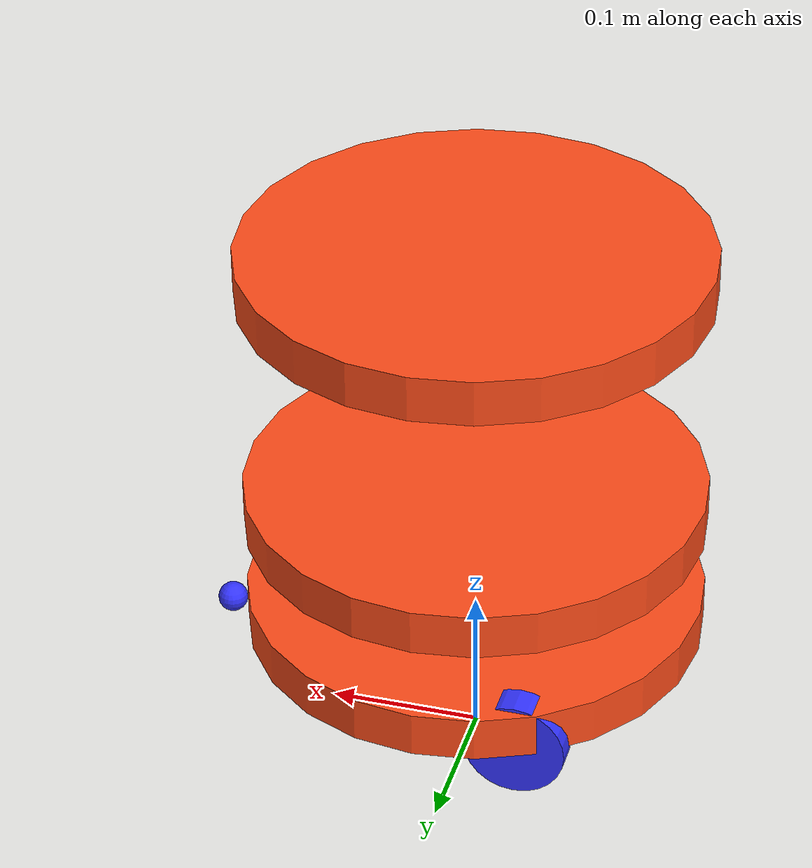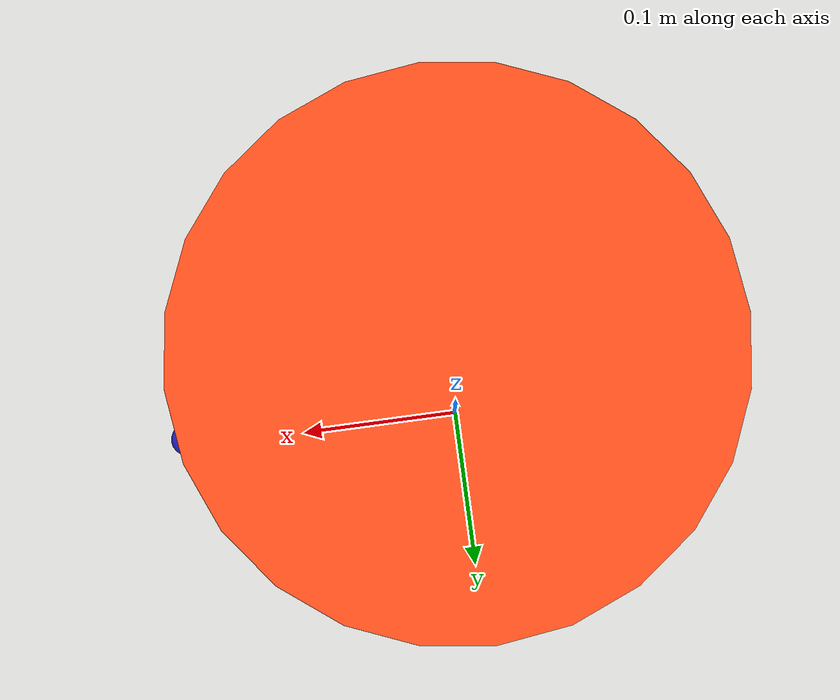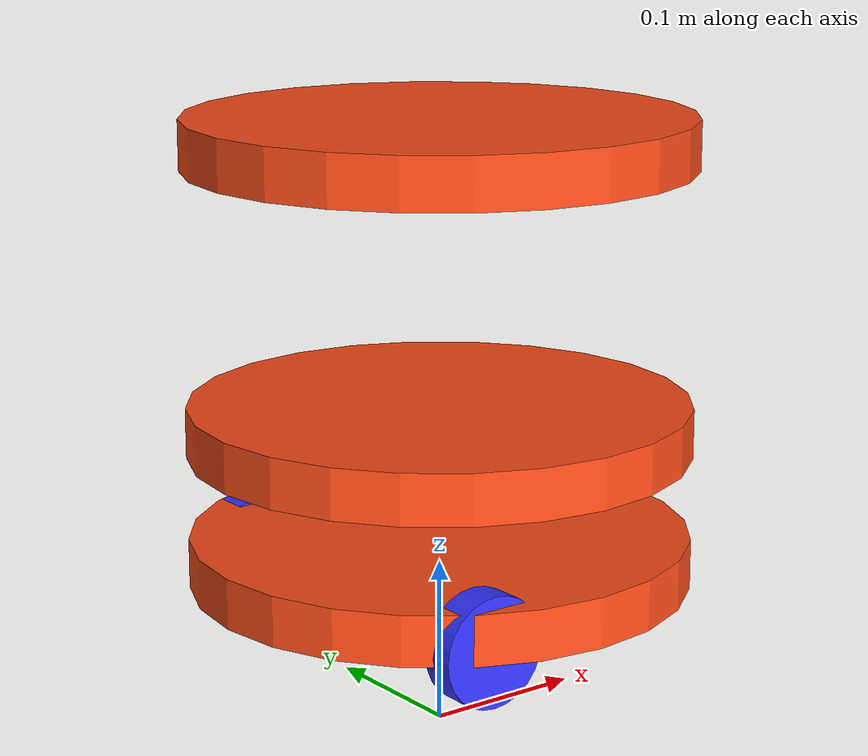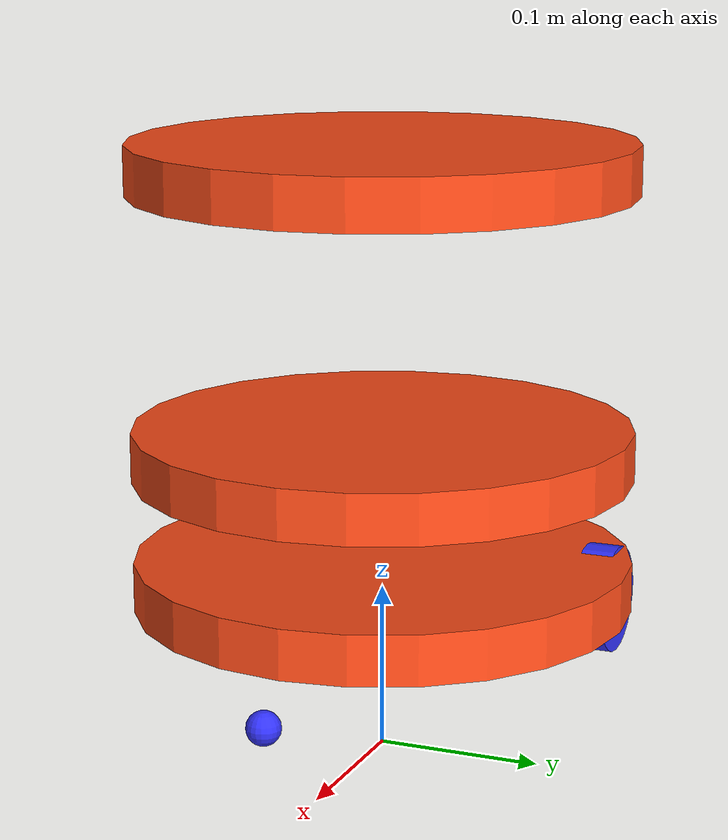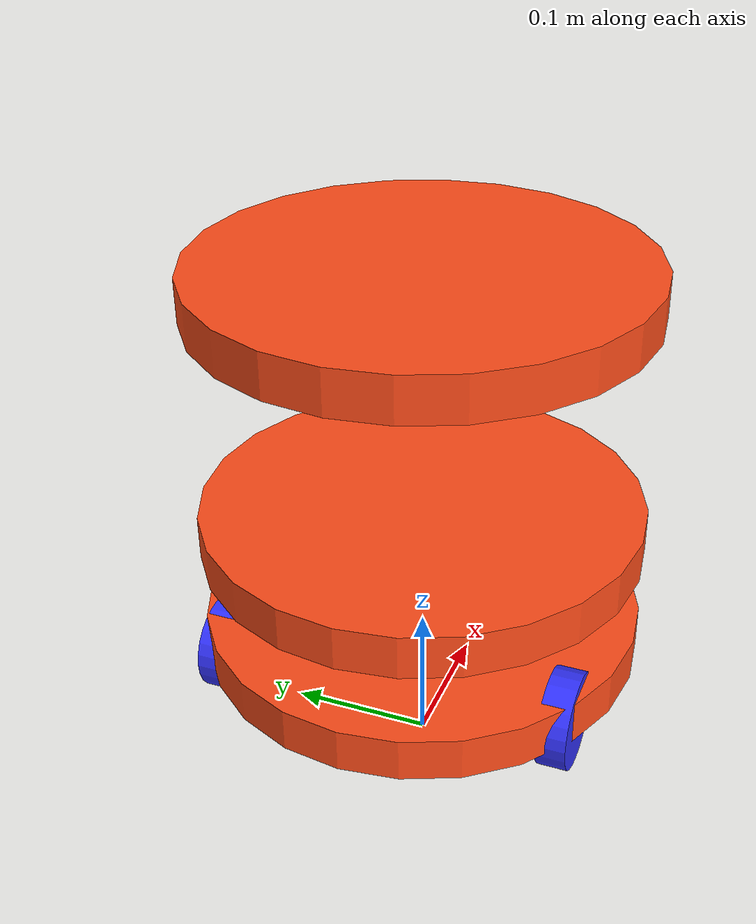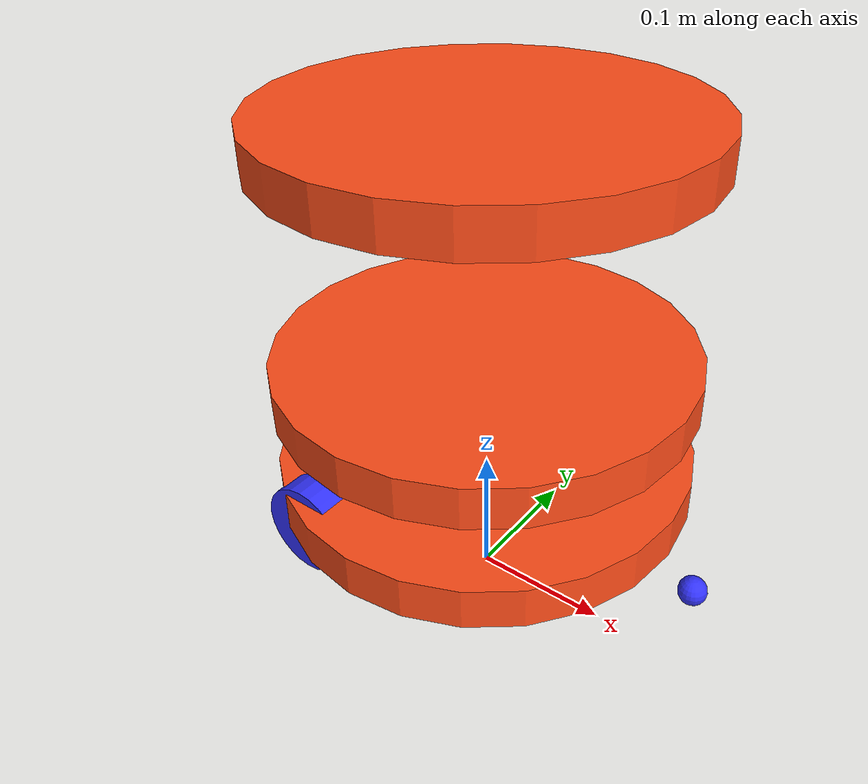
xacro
<?xml version="1.0"?>
<robot name="del" xmlns:xacro="http://www.ros.org/wiki/xacro">

    <xacro:arg name="is_sim" default="true"/>

    <xacro:include filename="inertial_macros.xacro"/>

    <!-- Include gazebo_control.xacro and pass the namespace argument -->
    <xacro:include filename="ros2_control.xacro"/>

    <material name="white">
        <color rgba="1 1 1 1" />
    </material>

    <material name="orange">
        <color rgba="1 0.3 0.1 1"/>
    </material>

    <material name="blue">
        <color rgba="0.2 0.2 1 1"/>
    </material>

    <material name="black">
        <color rgba="0 0 0 1"/>
    </material>

  <!-- BASE FOOTPRINT (Virtual link for TF tree) -->
  <link name="base_footprint"/>

  <!-- MAIN BASE LINK -->
  <link name="base_link">
    <visual>
      <geometry>
        <cylinder radius="0.150" length="0.03"/>
      </geometry>
      <origin xyz="0 0 0.03" rpy="0 0 0"/>
        <material name="orange"/>
    </visual>
    <collision>
      <geometry>
        <cylinder radius="0.150" length="0.03"/>
      </geometry>
      <origin xyz="0 0 0.03" rpy="0 0 0"/>
    </collision>
      <xacro:inertial_cylinder mass="0.1" length="0.04" radius="0.05">
           <origin xyz="-0.2 0 0.4" rpy="0 0 0"/>
      </xacro:inertial_cylinder>
  </link>

  <!--  BASE FOOTPRINT JOINT -->
  <joint name="base_joint" type="fixed">
    <parent link="base_footprint"/>
    <child link="base_link"/>
    <origin xyz="0 0 0.075" rpy="0 0 0"/>
  </joint>

  <link name="base_link_2">
    <visual>
      <geometry>
        <cylinder radius="0.150" length="0.03"/>
      </geometry>
      <origin xyz="0 0 0.03" rpy="0 0 0"/>
        <material name="orange"/>
    </visual>
    <collision>
      <geometry>
        <cylinder radius="0.150" length="0.03"/>
      </geometry>
      <origin xyz="0 0 0.03" rpy="0 0 0"/>
    </collision>
      <xacro:inertial_cylinder mass="0.1" length="0.04" radius="0.05">
           <origin xyz="0 0 0" rpy="0 0 0"/>
      </xacro:inertial_cylinder>
  </link>

  <joint name="base_base_joint" type="fixed">
    <parent link="base_link"/>
    <child link="base_link_2"/>
    <origin xyz="0 0 0.08" rpy="0 0 0"/>
  </joint>

  <link name="base_link_3">
    <visual>
      <geometry>
        <cylinder radius="0.150" length="0.03"/>
      </geometry>
      <origin xyz="0 0 0.03" rpy="0 0 0"/>
        <material name="orange"/>
    </visual>
    <collision>
      <geometry>
        <cylinder radius="0.150" length="0.03"/>
      </geometry>
      <origin xyz="0 0 0.03" rpy="0 0 0"/>
    </collision>
      <xacro:inertial_cylinder mass="0.1" length="0.04" radius="0.05">
           <origin xyz="0 0 0" rpy="0 0 0"/>
      </xacro:inertial_cylinder>
  </link>

  <joint name="base_base3_joint" type="fixed">
    <parent link="base_link"/>
    <child link="base_link_3"/>
    <origin xyz="0 0 0.25" rpy="0 0 0"/>
  </joint>

  <!--  REAR LEFT WHEEL (Continuous joint) -->
  <link name="rear_left_wheel">
    <visual>
      <geometry>
          <cylinder radius="0.0325" length="0.02"/>
      </geometry>
        <material name="blue"/>
    </visual>
    <collision>
      <geometry>
        <cylinder radius="0.0325" length="0.02"/>
      </geometry>
    </collision>
      <xacro:inertial_cylinder mass="0.1" length="0.04" radius="0.05">
          <origin xyz="0 0 0" rpy="0 0 0"/>
      </xacro:inertial_cylinder>
  </link>

  <joint name="rear_left_wheel_joint" type="continuous">
    <parent link="base_link"/>
    <child link="rear_left_wheel"/>
    <origin xyz="-0.06 0.12 0.015" rpy="1.5708 0 3.1416"/>
    <axis xyz="0 0 1"/>
    <limit effort="50000" velocity="10"/>
    <dynamics damping="1.0" friction="1.0"/>
  </joint>

  <!-- REAR RIGHT WHEEL (Continuous joint) -->
  <link name="rear_right_wheel">
    <visual>
      <geometry>
        <cylinder radius="0.0325" length="0.02"/>
      </geometry>
        <material name="blue"/>
    </visual>
    <collision>
      <geometry>
        <cylinder radius="0.0325" length="0.02"/>
      </geometry>
    </collision>
      <xacro:inertial_cylinder mass="0.1" length="0.04" radius="0.05">
           <origin xyz="0 0 0" rpy="0 0 0"/>
      </xacro:inertial_cylinder>
  </link>

  <joint name="rear_right_wheel_joint" type="continuous">
    <parent link="base_link"/>
    <child link="rear_right_wheel"/>
    <origin xyz="-0.06 -0.12 0.02" rpy="1.5708 0 3.1416"/>
    <axis xyz="0 0 1"/>
    <limit effort="50000" velocity="10"/>
    <dynamics damping="1.0" friction="1.0"/>
  </joint>

    <!-- CASTER WHEEL LINK -->
  <link name="caster_wheel">
    <visual>
        <geometry>
            <sphere radius="0.01"/>
        </geometry>
        <material name="blue"/>
    </visual>
    <collision>
        <geometry>
            <sphere radius="0.01"/>
        </geometry>
    </collision>
    <xacro:inertial_sphere mass="0.1" radius="0.01">
        <origin xyz="0 0 0" rpy="0 0 0"/>
    </xacro:inertial_sphere>
  </link>

  <joint name="caster_wheel_joint" type="fixed">
    <parent link="base_link"/>
    <child link="caster_wheel"/>
    <origin xyz="0.17 0 -0.0055"/>
  </joint>

  <!--lidar-->
  <link name="laser_link">
    <visual>
      <geometry>
        <cylinder radius="0.033" length="0.02"/>
      </geometry>
      <material name="white"/>
      <origin xyz="0 0 0" rpy="0 0 0"/>
    </visual>
    <collision>
        <geometry>
          <cylinder radius="0.033" length="0.02"/>
        </geometry>
        <origin xyz="0 0 0" rpy="0 0 0"/>
    </collision>
      <xacro:inertial_cylinder mass="0.1" length="0.04" radius="0.05">
          <origin xyz="0 0 0" rpy="0 0 0"/>
      </xacro:inertial_cylinder>
  </link>

  <joint name="base_laser_joint" type="fixed">
    <parent link="base_link"/>
    <child link="laser_link"/>
    <origin xyz="0.03 0 0.08" rpy="0 0 3.1416"/>
  </joint>

</robot>
